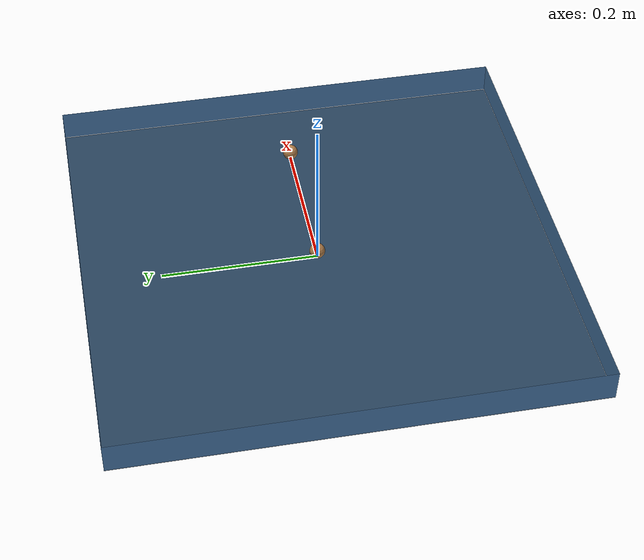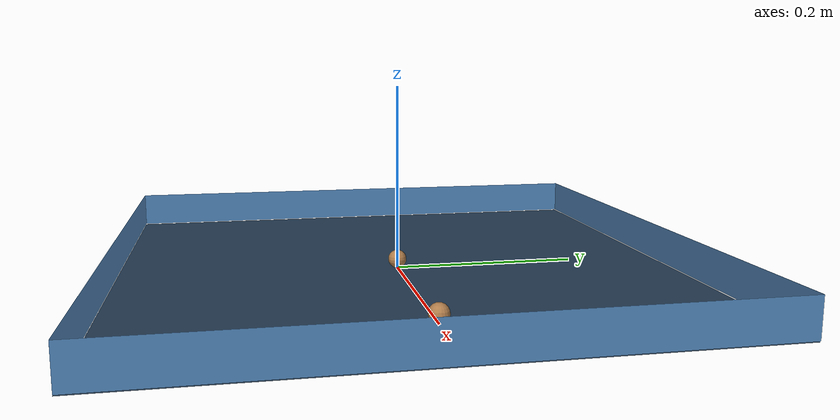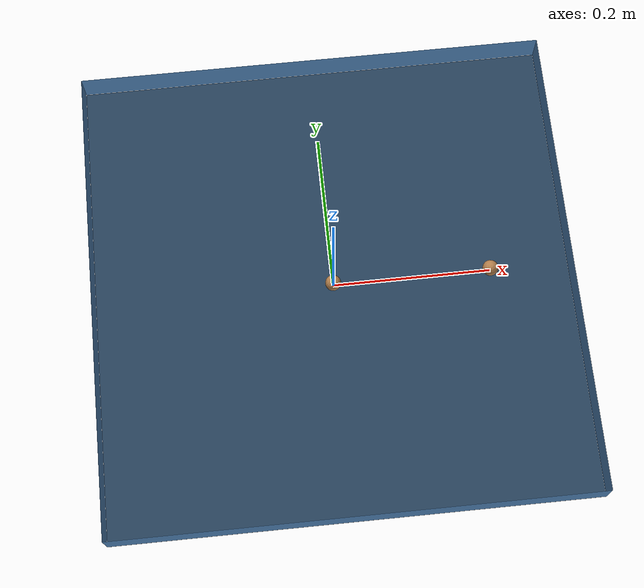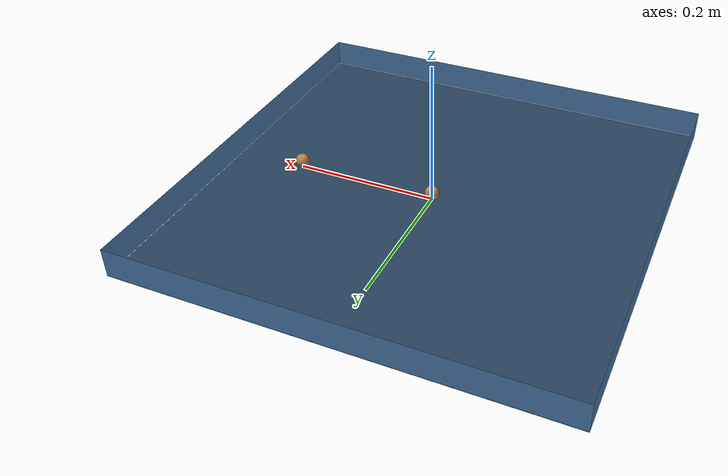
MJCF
<mujoco model="planar point mass">
    <visual>
        <headlight ambient=".4 .4 .4" diffuse=".8 .8 .8" specular="0.1 0.1 0.1"/>
        <map znear=".01"/>
        <quality shadowsize="2048"/>
    </visual>

    <asset>
        <texture name="skybox" type="skybox" builtin="gradient" rgb1=".4 .6 .8" rgb2="0 0 0"
                 width="800" height="800" mark="random" markrgb="1 1 1"/>
    </asset>

    <asset>
        <texture name="grid" type="2d" builtin="checker" rgb1=".1 .2 .3" rgb2=".2 .3 .4" width="300" height="300" mark="edge" markrgb=".2 .3 .4"/>
        <material name="grid" texture="grid" texrepeat="1 1" texuniform="true" reflectance=".2"/>
        <material name="self" rgba=".7 .5 .3 1"/>
        <material name="self_default" rgba=".7 .5 .3 1"/>
        <material name="self_highlight" rgba="0 .5 .3 1"/>
        <material name="effector" rgba=".7 .4 .2 1"/>
        <material name="effector_default" rgba=".7 .4 .2 1"/>
        <material name="effector_highlight" rgba="0 .5 .3 1"/>
        <material name="decoration" rgba=".3 .5 .7 1"/>
        <material name="eye" rgba="0 .2 1 1"/>
        <material name="target" rgba=".6 .3 .3 1"/>
        <material name="target_default" rgba=".6 .3 .3 1"/>
        <material name="target_highlight" rgba=".6 .3 .3 .4"/>
    </asset>

    <option timestep="0.01">
        <flag contact="enable"/>
    </option>

    <default>
        <joint type="hinge" axis="0 0 1" limited="true" range="-.29 .29" damping="1"/>
        <motor gear=".1" ctrlrange="-1 1" ctrllimited="true"/>
    </default>

    <worldbody>
        <light name="light" pos="0 0 1"/>
        <camera name="fixed" pos="0 0 .75" quat="1 0 0 0"/>
        <geom name="ground" type="plane" pos="0 0 0" size=".3 .3 .1" material="grid"/>
        <geom name="wall_x" type="plane" pos="-.3 0 .02" zaxis="1 0 0"  size=".02 .3 .02" material="decoration"/>
        <geom name="wall_y" type="plane" pos="0 -.3 .02" zaxis="0 1 0"  size=".3 .02 .02" material="decoration"/>
        <geom name="wall_neg_x" type="plane" pos=".3 0 .02" zaxis="-1 0 0"  size=".02 .3 .02" material="decoration"/>
        <geom name="wall_neg_y" type="plane" pos="0 .3 .02" zaxis="0 -1 0"  size=".3 .02 .02" material="decoration"/>

        <body name="pointmass" pos="0 0 .01">
            <camera name="cam0" pos="0 -0.3 0.3" xyaxes="1 0 0 0 0.7 0.7"/>
            <joint name="root_x" type="slide"  pos="0 0 0" axis="1 0 0" />
            <geom name="pointmass" type="sphere" size=".01" material="self" mass=".3"/>
        </body>

        <body name="pointmass2" pos=".2 0 .01">
            <camera name="cam1" pos="0 -0.3 0.3" xyaxes="1 0 0 0 0.7 0.7"/>
            <joint name="root_x2" type="slide"  pos="0 0 0" axis="1 0 0" />
            <geom name="pointmass2" type="sphere" size=".01" material="self" mass=".3"/>
        </body>

    </worldbody>

    <tendon>
        <fixed name="t1">
            <joint joint="root_x" coef="1"/>
        </fixed>
        <fixed name="t2">
            <joint joint="root_x" coef="0"/>
        </fixed>
    </tendon>

    <actuator>
        <motor name="t1" tendon="t1"/>
        <motor name="t2" tendon="t2"/>
    </actuator>
</mujoco>
